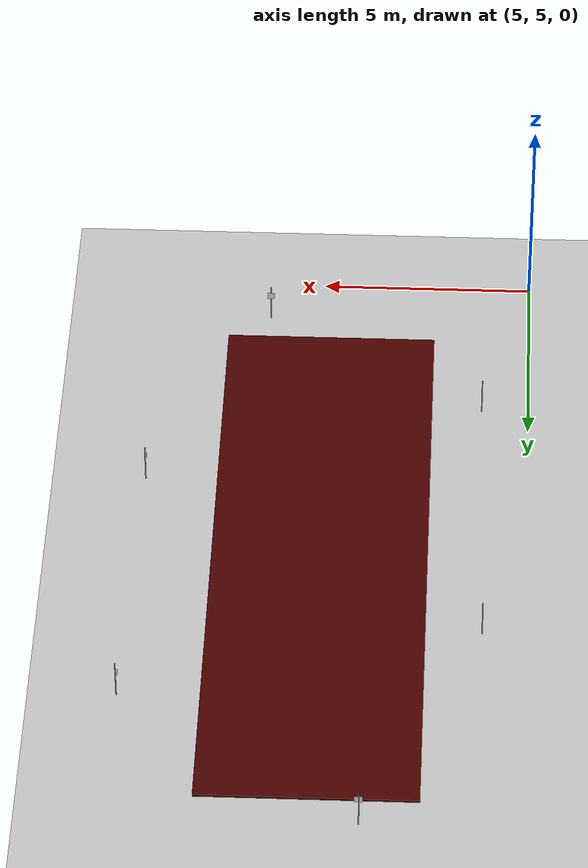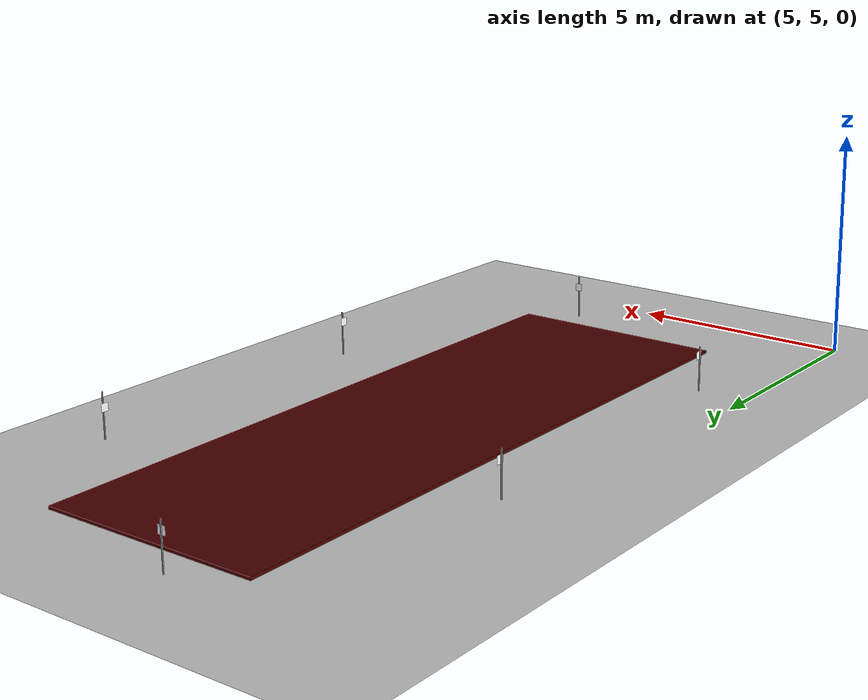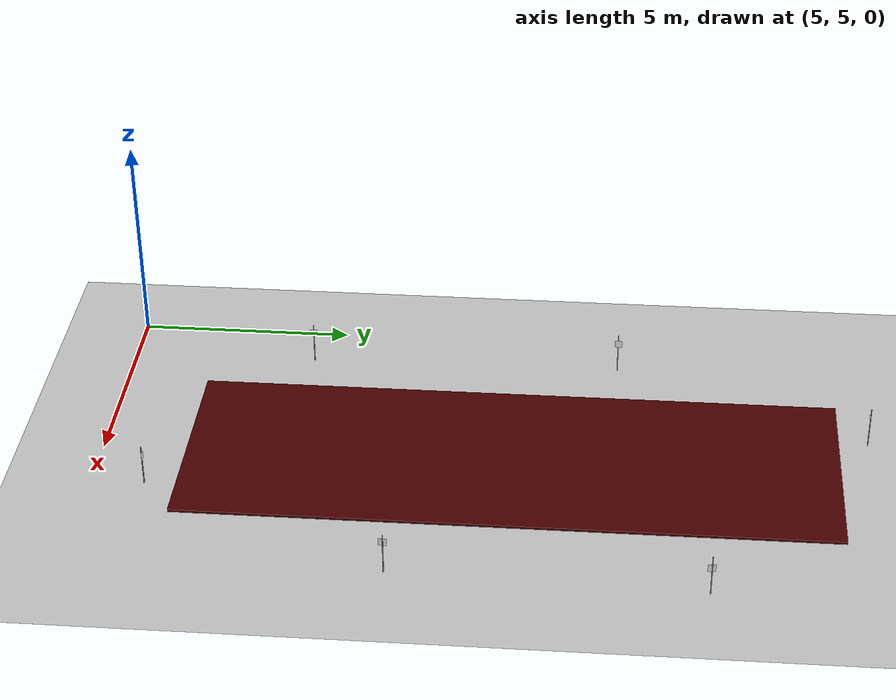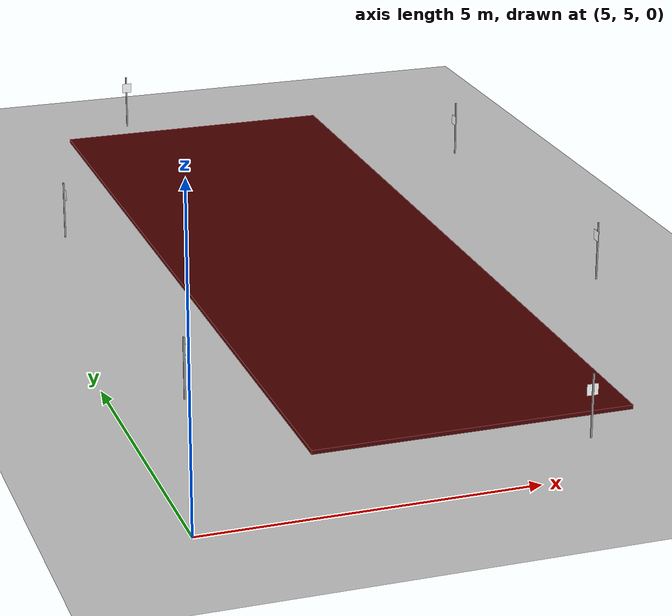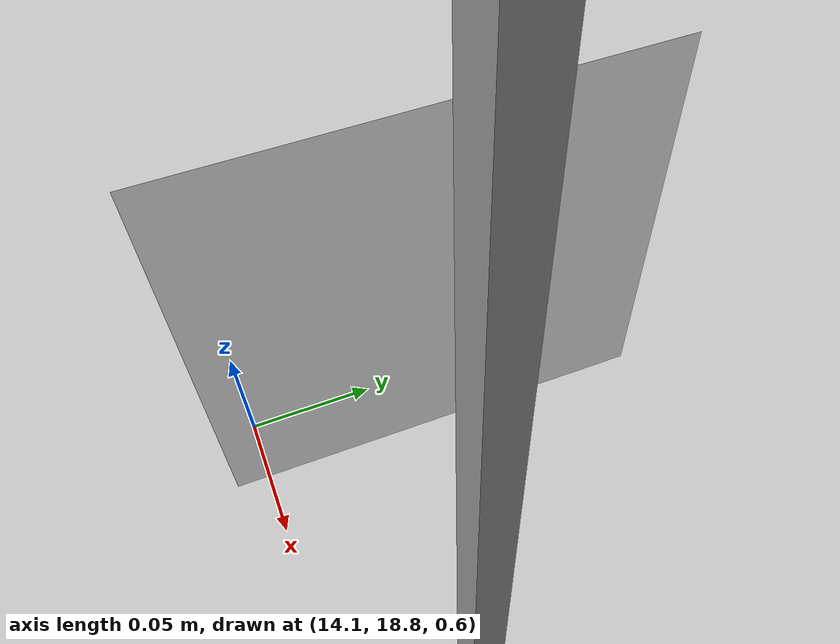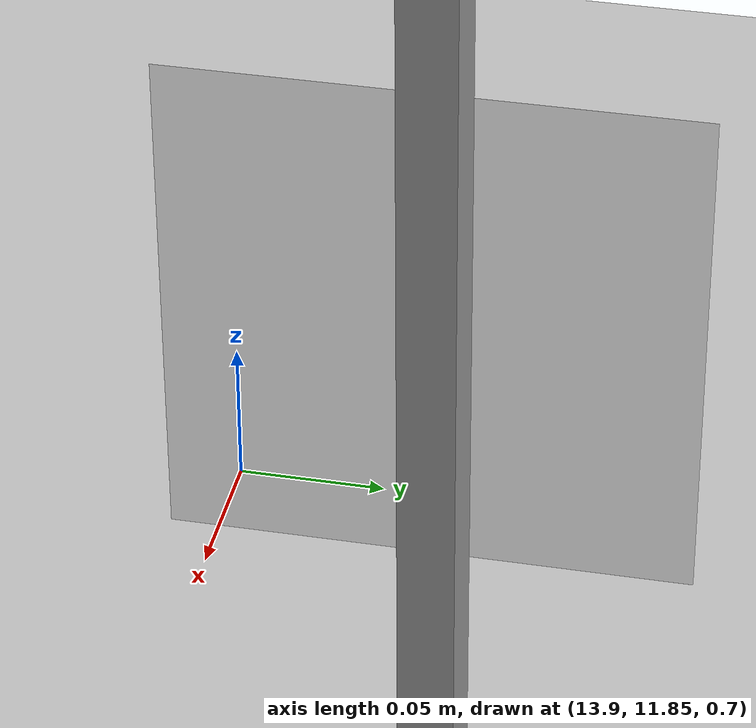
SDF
<sdf version="1.6">
 <world name="default">
  <light name="sun" type="directional">
   <pose>0 0 10 0 -0 0</pose>
   <diffuse>0.8 0.8 0.8 1</diffuse>
   <specular>0.1 0.1 0.1 1</specular>
   <attenuation>
    <range>1000</range>
    <constant>0.9</constant>
    <linear>0.01</linear>
    <quadratic>0.001</quadratic>
   </attenuation>
   <direction>-0.5 0.5 -1</direction>
  </light>
  <model name="ground_plane">
   <static>1</static>
   <link name="link">
    <collision name="collision">
     <geometry><plane><normal>0 0 1</normal><size>100 100</size></plane></geometry>
     <surface><friction><ode><mu>100</mu><mu2>50</mu2></ode></friction></surface>
    </collision>
    <visual name="visual">
     <cast_shadows>0</cast_shadows>
     <geometry><plane><normal>0 0 1</normal><size>100 100</size></plane></geometry>
     <material>
      <script><uri>file://media/materials/scripts/gazebo.material</uri><name>Gazebo/Grey</name></script>
     </material>
    </visual>
   </link>
  </model>
  <gravity>0 0 -9.8</gravity>
  <magnetic_field>6e-06 2.3e-05 -4.2e-05</magnetic_field>
  <atmosphere type="adiabatic"/>
  <physics name="default_physics" default="0" type="ode">
   <max_step_size>0.001</max_step_size>
   <real_time_factor>1</real_time_factor>
   <real_time_update_rate>1000</real_time_update_rate>
  </physics>
  <scene><ambient>0.4 0.4 0.4 1</ambient><background>0.7 0.7 0.7 1</background><shadows>1</shadows></scene>
  <spherical_coordinates>
   <surface_model>EARTH_WGS84</surface_model>
   <latitude_deg>0</latitude_deg>
   <longitude_deg>0</longitude_deg>
   <elevation>0</elevation>
   <heading_deg>0</heading_deg>
  </spherical_coordinates>
  <model name="aruco_visual_marker_0">
   <link name="marker">
    <visual name="visual">
     <geometry><box><size>0.1778 0.1778 1e-05</size></box></geometry>
     <material>
      <script>
       <uri>model://aruco_visual_marker_0/materials/scripts</uri>
       <uri>model://aruco_visual_marker_0/materials/textures</uri>
       <name>ArucoVisualMarker0/Marker</name>
      </script>
      <ambient>1 1 1 1</ambient>
      <diffuse>1 1 1 1</diffuse>
      <specular>0 0 0 1</specular>
      <emissive>1 1 1 0</emissive>
      <shader type="vertex"><normal_map>__default__</normal_map></shader>
     </material>
    </visual>
    <collision name="collision"><geometry><box><size>0.1778 0.1778 1e-05</size></box></geometry></collision>
   </link>
   <link name="marker_pad">
    <pose frame="marker">0 0 -1e-05 0 -0 0</pose>
    <visual name="visual">
     <geometry><box><size>1e-05 1e-05 1e-05</size></box></geometry>
     <material>
      <lighting>1</lighting>
      <script><uri>file://media/materials/scripts/gazebo.material</uri><name>Gazebo/White</name></script>
      <ambient>0.3 0.3 0.3 1</ambient>
      <diffuse>0.7 0.7 0.7 1</diffuse>
      <specular>0.01 0.01 0.01 1</specular>
      <emissive>1 1 1 0</emissive>
      <shader type="vertex"><normal_map>__default__</normal_map></shader>
     </material>
    </visual>
    <collision name="collision"><geometry><box><size>0.1778 0.1778 1e-05</size></box></geometry></collision>
   </link>
   <joint name="marker_JOINT_marker_pad" type="revolute">
    <parent>marker</parent>
    <child>marker_pad</child>
    <axis>
     <xyz>0 0 1</xyz>
     <limit><upper>0</upper><lower>0</lower></limit>
     <use_parent_model_frame>0</use_parent_model_frame>
     <dynamics><spring_reference>0</spring_reference><spring_stiffness>0</spring_stiffness></dynamics>
    </axis>
   </joint>
   <static>1</static>
   <pose>11.2803 6.2198 0.744645 1.57079 -1.57079 3.14159</pose>
  </model>
  <model name="aruco_visual_marker_1">
   <link name="marker">
    <visual name="visual">
     <geometry><box><size>0.1778 0.1778 1e-05</size></box></geometry>
     <material>
      <script>
       <uri>model://aruco_visual_marker_1/materials/scripts</uri>
       <uri>model://aruco_visual_marker_1/materials/textures</uri>
       <name>ArucoVisualMarker1/Marker</name>
      </script>
      <ambient>1 1 1 1</ambient>
      <diffuse>1 1 1 1</diffuse>
      <specular>0 0 0 1</specular>
      <emissive>1 1 1 0</emissive>
      <shader type="vertex"><normal_map>__default__</normal_map></shader>
     </material>
    </visual>
    <collision name="collision"><geometry><box><size>0.1778 0.1778 1e-05</size></box></geometry></collision>
   </link>
   <link name="marker_pad">
    <pose frame="marker">0 0 -1e-05 0 -0 0</pose>
    <visual name="visual">
     <geometry><box><size>1e-05 1e-05 1e-05</size></box></geometry>
     <material>
      <lighting>1</lighting>
      <script><uri>file://media/materials/scripts/gazebo.material</uri><name>Gazebo/White</name></script>
      <ambient>0.3 0.3 0.3 1</ambient>
      <diffuse>0.7 0.7 0.7 1</diffuse>
      <specular>0.01 0.01 0.01 1</specular>
      <emissive>1 1 1 0</emissive>
      <shader type="vertex"><normal_map>__default__</normal_map></shader>
     </material>
    </visual>
    <collision name="collision"><geometry><box><size>0.1778 0.1778 1e-05</size></box></geometry></collision>
   </link>
   <joint name="marker_JOINT_marker_pad" type="revolute">
    <parent>marker</parent>
    <child>marker_pad</child>
    <axis>
     <xyz>0 0 1</xyz>
     <limit><upper>0</upper><lower>0</lower></limit>
     <use_parent_model_frame>0</use_parent_model_frame>
     <dynamics><spring_reference>0</spring_reference><spring_stiffness>0</spring_stiffness></dynamics>
    </axis>
   </joint>
   <static>1</static>
   <pose>13.9238 11.9203 0.783528 -3.14159 -1.57079 -3.14159</pose>
  </model>
  <model name="aruco_visual_marker_2">
   <link name="marker">
    <visual name="visual">
     <geometry><box><size>0.1778 0.1778 1e-05</size></box></geometry>
     <material>
      <script>
       <uri>model://aruco_visual_marker_2/materials/scripts</uri>
       <uri>model://aruco_visual_marker_2/materials/textures</uri>
       <name>ArucoVisualMarker2/Marker</name>
      </script>
      <ambient>1 1 1 1</ambient>
      <diffuse>1 1 1 1</diffuse>
      <specular>0 0 0 1</specular>
      <emissive>1 1 1 0</emissive>
      <shader type="vertex"><normal_map>__default__</normal_map></shader>
     </material>
    </visual>
    <collision name="collision"><geometry><box><size>0.1778 0.1778 1e-05</size></box></geometry></collision>
   </link>
   <link name="marker_pad">
    <pose frame="marker">0 0 -1e-05 0 -0 0</pose>
    <visual name="visual">
     <geometry><box><size>1e-05 1e-05 1e-05</size></box></geometry>
     <material>
      <lighting>1</lighting>
      <script><uri>file://media/materials/scripts/gazebo.material</uri><name>Gazebo/White</name></script>
      <ambient>0.3 0.3 0.3 1</ambient>
      <diffuse>0.7 0.7 0.7 1</diffuse>
      <specular>0.01 0.01 0.01 1</specular>
      <emissive>1 1 1 0</emissive>
      <shader type="vertex"><normal_map>__default__</normal_map></shader>
     </material>
    </visual>
    <collision name="collision"><geometry><box><size>0.1778 0.1778 1e-05</size></box></geometry></collision>
   </link>
   <joint name="marker_JOINT_marker_pad" type="revolute">
    <parent>marker</parent>
    <child>marker_pad</child>
    <axis>
     <xyz>0 0 1</xyz>
     <limit><upper>0</upper><lower>0</lower></limit>
     <use_parent_model_frame>0</use_parent_model_frame>
     <dynamics><spring_reference>0</spring_reference><spring_stiffness>0</spring_stiffness></dynamics>
    </axis>
   </joint>
   <static>1</static>
   <pose>6.13169 9.34664 0.803579 -3e-06 -1.57079 3.14159</pose>
  </model>
  <model name="aruco_visual_marker_3">
   <link name="marker">
    <visual name="visual">
     <geometry><box><size>0.1778 0.1778 1e-05</size></box></geometry>
     <material>
      <script>
       <uri>model://aruco_visual_marker_3/materials/scripts</uri>
       <uri>model://aruco_visual_marker_3/materials/textures</uri>
       <name>ArucoVisualMarker3/Marker</name>
      </script>
      <ambient>1 1 1 1</ambient>
      <diffuse>1 1 1 1</diffuse>
      <specular>0 0 0 1</specular>
      <emissive>1 1 1 0</emissive>
      <shader type="vertex"><normal_map>__default__</normal_map></shader>
     </material>
    </visual>
    <collision name="collision"><geometry><box><size>0.1778 0.1778 1e-05</size></box></geometry></collision>
   </link>
   <link name="marker_pad">
    <pose frame="marker">0 0 -1e-05 0 -0 0</pose>
    <visual name="visual">
     <geometry><box><size>1e-05 1e-05 1e-05</size></box></geometry>
     <material>
      <lighting>1</lighting>
      <script><uri>file://media/materials/scripts/gazebo.material</uri><name>Gazebo/White</name></script>
      <ambient>0.3 0.3 0.3 1</ambient>
      <diffuse>0.7 0.7 0.7 1</diffuse>
      <specular>0.01 0.01 0.01 1</specular>
      <emissive>1 1 1 0</emissive>
      <shader type="vertex"><normal_map>__default__</normal_map></shader>
     </material>
    </visual>
    <collision name="collision"><geometry><box><size>0.1778 0.1778 1e-05</size></box></geometry></collision>
   </link>
   <joint name="marker_JOINT_marker_pad" type="revolute">
    <parent>marker</parent>
    <child>marker_pad</child>
    <axis>
     <xyz>0 0 1</xyz>
     <limit><upper>0</upper><lower>0</lower></limit>
     <use_parent_model_frame>0</use_parent_model_frame>
     <dynamics><spring_reference>0</spring_reference><spring_stiffness>0</spring_stiffness></dynamics>
    </axis>
   </joint>
   <static>1</static>
   <pose>8.62192 22.5255 0.785654 -1.57554 -1.57079 -3.13686</pose>
  </model>
  <model name="unit_box_0_0">
   <link name="link">
    <inertial>
     <mass>1</mass>
     <inertia>
      <ixx>0.166667</ixx>
      <ixy>0</ixy>
      <ixz>0</ixz>
      <iyy>0.166667</iyy>
      <iyz>0</iyz>
      <izz>0.166667</izz>
     </inertia>
    </inertial>
    <visual name="visual">
     <geometry><box><size>0.025351 0.018729 1</size></box></geometry>
     <material>
      <script><name>Gazebo/Grey</name><uri>file://media/materials/scripts/gazebo.material</uri></script>
      <ambient>1 1 1 1</ambient>
      <diffuse>0.7 0.7 0.7 1</diffuse>
      <specular>0.01 0.01 0.01 1</specular>
      <emissive>0.7 0.7 0.7 1</emissive>
      <shader type="vertex"><normal_map>__default__</normal_map></shader>
     </material>
    </visual>
    <collision name="collision">
     <geometry><box><size>0.025351 0.018729 1</size></box></geometry>
     <surface>
      <friction>
       <ode><mu>1</mu><mu2>1</mu2><fdir1>0 0 0</fdir1><slip1>0</slip1><slip2>0</slip2></ode>
       <torsional>
        <coefficient>1</coefficient>
        <patch_radius>0</patch_radius>
        <surface_radius>0</surface_radius>
        <use_patch_radius>1</use_patch_radius>
        <ode><slip>0</slip></ode>
       </torsional>
      </friction>
      <bounce><restitution_coefficient>0</restitution_coefficient><threshold>1e+06</threshold></bounce>
      <contact>
       <collide_without_contact>0</collide_without_contact>
       <collide_without_contact_bitmask>1</collide_without_contact_bitmask>
       <collide_bitmask>1</collide_bitmask>
       <ode>
        <soft_cfm>0</soft_cfm>
        <soft_erp>0.2</soft_erp>
        <kp>1e+13</kp>
        <kd>1</kd>
        <max_vel>0.01</max_vel>
        <min_depth>0</min_depth>
       </ode>
       <bullet>
        <split_impulse>1</split_impulse>
        <split_impulse_penetration_threshold>-0.01</split_impulse_penetration_threshold>
        <soft_cfm>0</soft_cfm>
        <soft_erp>0.2</soft_erp>
        <kp>1e+13</kp>
        <kd>1</kd>
       </bullet>
      </contact>
     </surface>
    </collision>
   </link>
   <static>0</static>
   <pose>13.963 11.9295 0.5 2e-06 1e-06 0.000578</pose>
  </model>
  <model name="unit_box_0_0_clone">
   <link name="link">
    <inertial>
     <mass>1</mass>
     <inertia>
      <ixx>0.166667</ixx>
      <ixy>0</ixy>
      <ixz>0</ixz>
      <iyy>0.166667</iyy>
      <iyz>0</iyz>
      <izz>0.166667</izz>
     </inertia>
    </inertial>
    <visual name="visual">
     <geometry><box><size>0.025351 0.018729 1</size></box></geometry>
     <material>
      <script><name>Gazebo/Grey</name><uri>file://media/materials/scripts/gazebo.material</uri></script>
      <ambient>1 1 1 1</ambient>
      <diffuse>0.7 0.7 0.7 1</diffuse>
      <specular>0.01 0.01 0.01 1</specular>
      <emissive>0.7 0.7 0.7 1</emissive>
      <shader type="vertex"><normal_map>__default__</normal_map></shader>
     </material>
    </visual>
    <collision name="collision">
     <geometry><box><size>0.025351 0.018729 1</size></box></geometry>
     <surface>
      <friction>
       <ode><mu>1</mu><mu2>1</mu2><fdir1>0 0 0</fdir1><slip1>0</slip1><slip2>0</slip2></ode>
       <torsional>
        <coefficient>1</coefficient>
        <patch_radius>0</patch_radius>
        <surface_radius>0</surface_radius>
        <use_patch_radius>1</use_patch_radius>
        <ode><slip>0</slip></ode>
       </torsional>
      </friction>
      <bounce><restitution_coefficient>0</restitution_coefficient><threshold>1e+06</threshold></bounce>
      <contact>
       <collide_without_contact>0</collide_without_contact>
       <collide_without_contact_bitmask>1</collide_without_contact_bitmask>
       <collide_bitmask>1</collide_bitmask>
       <ode>
        <soft_cfm>0</soft_cfm>
        <soft_erp>0.2</soft_erp>
        <kp>1e+13</kp>
        <kd>1</kd>
        <max_vel>0.01</max_vel>
        <min_depth>0</min_depth>
       </ode>
       <bullet>
        <split_impulse>1</split_impulse>
        <split_impulse_penetration_threshold>-0.01</split_impulse_penetration_threshold>
        <soft_cfm>0</soft_cfm>
        <soft_erp>0.2</soft_erp>
        <kp>1e+13</kp>
        <kd>1</kd>
       </bullet>
      </contact>
     </surface>
    </collision>
   </link>
   <static>0</static>
   <pose>11.2798 6.20459 0.5 6e-06 1e-06 0.000528</pose>
  </model>
  <model name="unit_box_0_0_clone_0">
   <link name="link">
    <inertial>
     <mass>1</mass>
     <inertia>
      <ixx>0.166667</ixx>
      <ixy>0</ixy>
      <ixz>0</ixz>
      <iyy>0.166667</iyy>
      <iyz>0</iyz>
      <izz>0.166667</izz>
     </inertia>
    </inertial>
    <visual name="visual">
     <geometry><box><size>0.025351 0.018729 1</size></box></geometry>
     <material>
      <script><name>Gazebo/Grey</name><uri>file://media/materials/scripts/gazebo.material</uri></script>
      <ambient>1 1 1 1</ambient>
      <diffuse>0.7 0.7 0.7 1</diffuse>
      <specular>0.01 0.01 0.01 1</specular>
      <emissive>0.7 0.7 0.7 1</emissive>
      <shader type="vertex"><normal_map>__default__</normal_map></shader>
     </material>
    </visual>
    <collision name="collision">
     <geometry><box><size>0.025351 0.018729 1</size></box></geometry>
     <surface>
      <friction>
       <ode><mu>1</mu><mu2>1</mu2><fdir1>0 0 0</fdir1><slip1>0</slip1><slip2>0</slip2></ode>
       <torsional>
        <coefficient>1</coefficient>
        <patch_radius>0</patch_radius>
        <surface_radius>0</surface_radius>
        <use_patch_radius>1</use_patch_radius>
        <ode><slip>0</slip></ode>
       </torsional>
      </friction>
      <bounce><restitution_coefficient>0</restitution_coefficient><threshold>1e+06</threshold></bounce>
      <contact>
       <collide_without_contact>0</collide_without_contact>
       <collide_without_contact_bitmask>1</collide_without_contact_bitmask>
       <collide_bitmask>1</collide_bitmask>
       <ode>
        <soft_cfm>0</soft_cfm>
        <soft_erp>0.2</soft_erp>
        <kp>1e+13</kp>
        <kd>1</kd>
        <max_vel>0.01</max_vel>
        <min_depth>0</min_depth>
       </ode>
       <bullet>
        <split_impulse>1</split_impulse>
        <split_impulse_penetration_threshold>-0.01</split_impulse_penetration_threshold>
        <soft_cfm>0</soft_cfm>
        <soft_erp>0.2</soft_erp>
        <kp>1e+13</kp>
        <kd>1</kd>
       </bullet>
      </contact>
     </surface>
    </collision>
   </link>
   <static>0</static>
   <pose>6.11033 9.34605 0.5 -9e-06 6e-06 0.000208</pose>
  </model>
  <model name="unit_box_0_0_clone_1">
   <link name="link">
    <inertial>
     <mass>1</mass>
     <inertia>
      <ixx>0.166667</ixx>
      <ixy>0</ixy>
      <ixz>0</ixz>
      <iyy>0.166667</iyy>
      <iyz>0</iyz>
      <izz>0.166667</izz>
     </inertia>
    </inertial>
    <visual name="visual">
     <geometry><box><size>0.025351 0.018729 1</size></box></geometry>
     <material>
      <script><name>Gazebo/Grey</name><uri>file://media/materials/scripts/gazebo.material</uri></script>
      <ambient>1 1 1 1</ambient>
      <diffuse>0.7 0.7 0.7 1</diffuse>
      <specular>0.01 0.01 0.01 1</specular>
      <emissive>0.7 0.7 0.7 1</emissive>
      <shader type="vertex"><normal_map>__default__</normal_map></shader>
     </material>
    </visual>
    <collision name="collision">
     <geometry><box><size>0.025351 0.018729 1</size></box></geometry>
     <surface>
      <friction>
       <ode><mu>1</mu><mu2>1</mu2><fdir1>0 0 0</fdir1><slip1>0</slip1><slip2>0</slip2></ode>
       <torsional>
        <coefficient>1</coefficient>
        <patch_radius>0</patch_radius>
        <surface_radius>0</surface_radius>
        <use_patch_radius>1</use_patch_radius>
        <ode><slip>0</slip></ode>
       </torsional>
      </friction>
      <bounce><restitution_coefficient>0</restitution_coefficient><threshold>1e+06</threshold></bounce>
      <contact>
       <collide_without_contact>0</collide_without_contact>
       <collide_without_contact_bitmask>1</collide_without_contact_bitmask>
       <collide_bitmask>1</collide_bitmask>
       <ode>
        <soft_cfm>0</soft_cfm>
        <soft_erp>0.2</soft_erp>
        <kp>1e+13</kp>
        <kd>1</kd>
        <max_vel>0.01</max_vel>
        <min_depth>0</min_depth>
       </ode>
       <bullet>
        <split_impulse>1</split_impulse>
        <split_impulse_penetration_threshold>-0.01</split_impulse_penetration_threshold>
        <soft_cfm>0</soft_cfm>
        <soft_erp>0.2</soft_erp>
        <kp>1e+13</kp>
        <kd>1</kd>
       </bullet>
      </contact>
     </surface>
    </collision>
   </link>
   <static>0</static>
   <pose>8.61422 22.5386 0.5 3e-06 -4e-06 0.000502</pose>
  </model>
  <model name="unit_box_0_1_0">
   <link name="unit_box_0_1_0::link">
    <inertial>
     <mass>1</mass>
     <inertia>
      <ixx>0.166667</ixx>
      <ixy>0</ixy>
      <ixz>0</ixz>
      <iyy>0.166667</iyy>
      <iyz>0</iyz>
      <izz>0.166667</izz>
     </inertia>
    </inertial>
    <kinematic>1</kinematic>
    <visual name="ModelPreview_3::link::visual_1">
     <geometry><box><size>4.98982 14.9433 0.064772</size></box></geometry>
     <material>
      <script><name>Gazebo/Grey</name><uri>file://media/materials/scripts/gazebo.material</uri></script>
      <ambient>0.3 0 0 1</ambient>
      <diffuse>0.1 0.1 0.1 1</diffuse>
      <specular>0.3 0 0.01 1</specular>
      <emissive>0 0 0 1</emissive>
      <shader type="vertex"><normal_map>__default__</normal_map></shader>
     </material>
    </visual>
    <visual name="visual">
     <geometry><box><size>4.98982 14.9433 0.064772</size></box></geometry>
     <material>
      <script><name>Gazebo/Grey</name><uri>file://media/materials/scripts/gazebo.material</uri></script>
      <ambient>0.3 0 0 1</ambient>
      <diffuse>0.1 0.1 0.1 1</diffuse>
      <specular>0.3 0 0 1</specular>
      <emissive>0 0 0 1</emissive>
      <shader type="vertex"><normal_map>__default__</normal_map></shader>
     </material>
    </visual>
    <collision name="collision">
     <geometry><box><size>4.98982 14.9433 0.064772</size></box></geometry>
     <surface>
      <friction>
       <ode><mu>1</mu><mu2>1</mu2><fdir1>0 0 0</fdir1><slip1>0</slip1><slip2>0</slip2></ode>
       <torsional>
        <coefficient>1</coefficient>
        <patch_radius>0</patch_radius>
        <surface_radius>0</surface_radius>
        <use_patch_radius>1</use_patch_radius>
        <ode><slip>0</slip></ode>
       </torsional>
      </friction>
      <bounce><restitution_coefficient>0</restitution_coefficient><threshold>1e+06</threshold></bounce>
      <contact>
       <collide_without_contact>0</collide_without_contact>
       <collide_without_contact_bitmask>1</collide_without_contact_bitmask>
       <collide_bitmask>1</collide_bitmask>
       <ode>
        <soft_cfm>0</soft_cfm>
        <soft_erp>0.2</soft_erp>
        <kp>1e+13</kp>
        <kd>1</kd>
        <max_vel>0.01</max_vel>
        <min_depth>0</min_depth>
       </ode>
       <bullet>
        <split_impulse>1</split_impulse>
        <split_impulse_penetration_threshold>-0.01</split_impulse_penetration_threshold>
        <soft_cfm>0</soft_cfm>
        <soft_erp>0.2</soft_erp>
        <kp>1e+13</kp>
        <kd>1</kd>
       </bullet>
      </contact>
     </surface>
    </collision>
   </link>
   <static>0</static>
   <pose>9.78691 14.3968 0.032364 0 9e-06 -1e-05</pose>
  </model>
  <model name="aruco_visual_marker_4">
   <link name="marker">
    <visual name="visual">
     <geometry><box><size>0.1778 0.1778 1e-05</size></box></geometry>
     <material>
      <script>
       <uri>model://aruco_visual_marker_4/materials/scripts</uri>
       <uri>model://aruco_visual_marker_4/materials/textures</uri>
       <name>ArucoVisualMarker4/Marker</name>
      </script>
      <ambient>1 1 1 1</ambient>
      <diffuse>1 1 1 1</diffuse>
      <specular>0 0 0 1</specular>
      <emissive>1 1 1 0</emissive>
      <shader type="vertex"><normal_map>__default__</normal_map></shader>
     </material>
    </visual>
    <collision name="collision"><geometry><box><size>0.1778 0.1778 1e-05</size></box></geometry></collision>
   </link>
   <link name="marker_pad">
    <pose frame="marker">0 0 -1e-05 0 -0 0</pose>
    <visual name="visual">
     <geometry><box><size>1e-05 1e-05 1e-05</size></box></geometry>
     <material>
      <lighting>1</lighting>
      <script><uri>file://media/materials/scripts/gazebo.material</uri><name>Gazebo/White</name></script>
      <ambient>0.3 0.3 0.3 1</ambient>
      <diffuse>0.7 0.7 0.7 1</diffuse>
      <specular>0.01 0.01 0.01 1</specular>
      <emissive>1 1 1 0</emissive>
      <shader type="vertex"><normal_map>__default__</normal_map></shader>
     </material>
    </visual>
    <collision name="collision"><geometry><box><size>0.1778 0.1778 1e-05</size></box></geometry></collision>
   </link>
   <joint name="marker_JOINT_marker_pad" type="revolute">
    <parent>marker</parent>
    <child>marker_pad</child>
    <axis>
     <xyz>0 0 1</xyz>
     <limit><upper>0</upper><lower>0</lower></limit>
     <use_parent_model_frame>0</use_parent_model_frame>
     <dynamics><spring_reference>0</spring_reference><spring_stiffness>0</spring_stiffness></dynamics>
    </axis>
   </joint>
   <static>1</static>
   <pose>6.03068 16.7088 0.777042 -3e-06 -1.57079 3.14159</pose>
  </model>
  <model name="aruco_visual_marker_5">
   <link name="marker">
    <visual name="visual">
     <geometry><box><size>0.1778 0.1778 1e-05</size></box></geometry>
     <material>
      <script>
       <uri>model://aruco_visual_marker_5/materials/scripts</uri>
       <uri>model://aruco_visual_marker_5/materials/textures</uri>
       <name>ArucoVisualMarker5/Marker</name>
      </script>
      <ambient>1 1 1 1</ambient>
      <diffuse>1 1 1 1</diffuse>
      <specular>0 0 0 1</specular>
      <emissive>1 1 1 0</emissive>
      <shader type="vertex"><normal_map>__default__</normal_map></shader>
     </material>
    </visual>
    <collision name="collision"><geometry><box><size>0.1778 0.1778 1e-05</size></box></geometry></collision>
   </link>
   <link name="marker_pad">
    <pose frame="marker">0 0 -1e-05 0 -0 0</pose>
    <visual name="visual">
     <geometry><box><size>1e-05 1e-05 1e-05</size></box></geometry>
     <material>
      <lighting>1</lighting>
      <script><uri>file://media/materials/scripts/gazebo.material</uri><name>Gazebo/White</name></script>
      <ambient>0.3 0.3 0.3 1</ambient>
      <diffuse>0.7 0.7 0.7 1</diffuse>
      <specular>0.01 0.01 0.01 1</specular>
      <emissive>1 1 1 0</emissive>
      <shader type="vertex"><normal_map>__default__</normal_map></shader>
     </material>
    </visual>
    <collision name="collision"><geometry><box><size>0.1778 0.1778 1e-05</size></box></geometry></collision>
   </link>
   <joint name="marker_JOINT_marker_pad" type="revolute">
    <parent>marker</parent>
    <child>marker_pad</child>
    <axis>
     <xyz>0 0 1</xyz>
     <limit><upper>0</upper><lower>0</lower></limit>
     <use_parent_model_frame>0</use_parent_model_frame>
     <dynamics><spring_reference>0</spring_reference><spring_stiffness>0</spring_stiffness></dynamics>
    </axis>
   </joint>
   <static>1</static>
   <pose>14.1184 18.8752 0.677507 3.14159 -1.57079 3.14159</pose>
  </model>
  <model name="unit_box_0_0_clone_1_clone">
   <link name="link">
    <inertial>
     <mass>1</mass>
     <inertia>
      <ixx>0.166667</ixx>
      <ixy>0</ixy>
      <ixz>0</ixz>
      <iyy>0.166667</iyy>
      <iyz>0</iyz>
      <izz>0.166667</izz>
     </inertia>
    </inertial>
    <visual name="visual">
     <geometry><box><size>0.025351 0.018729 1</size></box></geometry>
     <material>
      <script><name>Gazebo/Grey</name><uri>file://media/materials/scripts/gazebo.material</uri></script>
      <ambient>1 1 1 1</ambient>
      <diffuse>0.7 0.7 0.7 1</diffuse>
      <specular>0.01 0.01 0.01 1</specular>
      <emissive>0.7 0.7 0.7 1</emissive>
      <shader type="vertex"><normal_map>__default__</normal_map></shader>
     </material>
    </visual>
    <collision name="collision">
     <geometry><box><size>0.025351 0.018729 1</size></box></geometry>
     <surface>
      <friction>
       <ode><mu>1</mu><mu2>1</mu2><fdir1>0 0 0</fdir1><slip1>0</slip1><slip2>0</slip2></ode>
       <torsional>
        <coefficient>1</coefficient>
        <patch_radius>0</patch_radius>
        <surface_radius>0</surface_radius>
        <use_patch_radius>1</use_patch_radius>
        <ode><slip>0</slip></ode>
       </torsional>
      </friction>
      <bounce><restitution_coefficient>0</restitution_coefficient><threshold>1e+06</threshold></bounce>
      <contact>
       <collide_without_contact>0</collide_without_contact>
       <collide_without_contact_bitmask>1</collide_without_contact_bitmask>
       <collide_bitmask>1</collide_bitmask>
       <ode>
        <soft_cfm>0</soft_cfm>
        <soft_erp>0.2</soft_erp>
        <kp>1e+13</kp>
        <kd>1</kd>
        <max_vel>0.01</max_vel>
        <min_depth>0</min_depth>
       </ode>
       <bullet>
        <split_impulse>1</split_impulse>
        <split_impulse_penetration_threshold>-0.01</split_impulse_penetration_threshold>
        <soft_cfm>0</soft_cfm>
        <soft_erp>0.2</soft_erp>
        <kp>1e+13</kp>
        <kd>1</kd>
       </bullet>
      </contact>
     </surface>
    </collision>
   </link>
   <static>0</static>
   <pose>6.00483 16.7018 0.5 6e-06 -3e-06 0.000615</pose>
  </model>
  <model name="unit_box_0_0_clone_1_clone_2">
   <link name="link">
    <inertial>
     <mass>1</mass>
     <inertia>
      <ixx>0.166667</ixx>
      <ixy>0</ixy>
      <ixz>0</ixz>
      <iyy>0.166667</iyy>
      <iyz>0</iyz>
      <izz>0.166667</izz>
     </inertia>
    </inertial>
    <visual name="visual">
     <geometry><box><size>0.025351 0.018729 1</size></box></geometry>
     <material>
      <script><name>Gazebo/Grey</name><uri>file://media/materials/scripts/gazebo.material</uri></script>
      <ambient>1 1 1 1</ambient>
      <diffuse>0.7 0.7 0.7 1</diffuse>
      <specular>0.01 0.01 0.01 1</specular>
      <emissive>0.7 0.7 0.7 1</emissive>
      <shader type="vertex"><normal_map>__default__</normal_map></shader>
     </material>
    </visual>
    <collision name="collision">
     <geometry><box><size>0.025351 0.018729 1</size></box></geometry>
     <surface>
      <friction>
       <ode><mu>1</mu><mu2>1</mu2><fdir1>0 0 0</fdir1><slip1>0</slip1><slip2>0</slip2></ode>
       <torsional>
        <coefficient>1</coefficient>
        <patch_radius>0</patch_radius>
        <surface_radius>0</surface_radius>
        <use_patch_radius>1</use_patch_radius>
        <ode><slip>0</slip></ode>
       </torsional>
      </friction>
      <bounce><restitution_coefficient>0</restitution_coefficient><threshold>1e+06</threshold></bounce>
      <contact>
       <collide_without_contact>0</collide_without_contact>
       <collide_without_contact_bitmask>1</collide_without_contact_bitmask>
       <collide_bitmask>1</collide_bitmask>
       <ode>
        <soft_cfm>0</soft_cfm>
        <soft_erp>0.2</soft_erp>
        <kp>1e+13</kp>
        <kd>1</kd>
        <max_vel>0.01</max_vel>
        <min_depth>0</min_depth>
       </ode>
       <bullet>
        <split_impulse>1</split_impulse>
        <split_impulse_penetration_threshold>-0.01</split_impulse_penetration_threshold>
        <soft_cfm>0</soft_cfm>
        <soft_erp>0.2</soft_erp>
        <kp>1e+13</kp>
        <kd>1</kd>
       </bullet>
      </contact>
     </surface>
    </collision>
   </link>
   <static>0</static>
   <pose>14.1603 18.8818 0.5 3e-06 -0 5.5e-05</pose>
  </model>
 </world>
</sdf>
